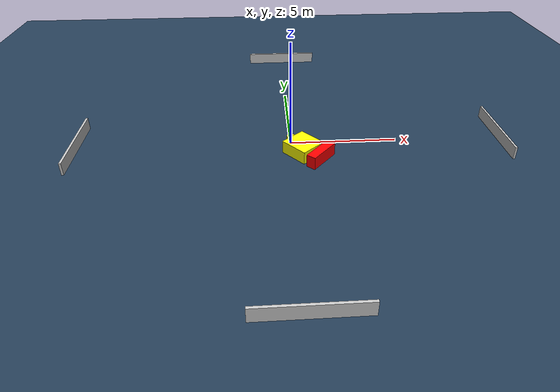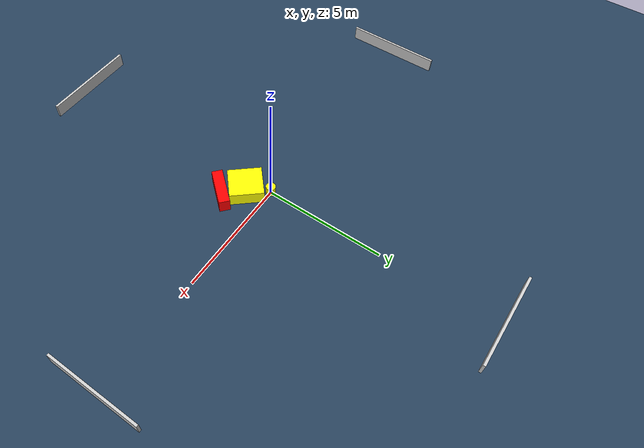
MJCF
<?xml version="1.0" ?>
<mujoco model="generated_environment">
  <option timestep="0.01" integrator="RK4" cone="elliptic"/>
  <default>
    <geom density="1"/>
  </default>
  <asset>
    <texture builtin="gradient" height="3072" name="skybox" rgb1="0.3 0.5 0.7" rgb2="0 0 0" type="skybox" width="512"/>
    <texture builtin="checker" height="300" name="groundplane" rgb1="0.2 0.3 0.4" rgb2="0.1 0.2 0.3" type="2d" width="300"/>
    <material name="groundplane" reflectance="0.2" texrepeat="5 5" texture="groundplane"/>
  </asset>
  <worldbody>
    <light dir="0 0 -1" directional="true" pos="0 0 1.5"/>
    <geom condim="3" friction="0.5 0.005 0.001" material="groundplane" name="floor" pos="0 0 0" size="0 0 0.05" type="plane"/>
    <body name="walls">
      <geom name="wall_1" condim="4" pos="-10.0 0.0 0.3" rgba="0.800000011920929 0.800000011920929 0.800000011920929 1.0" size="0.05 2.0 0.3" type="box"/>
      <geom name="wall_2" condim="4" pos="10.0 0.0 0.3" rgba="0.800000011920929 0.800000011920929 0.800000011920929 1.0" size="0.05 2.0 0.3" type="box"/>
      <geom name="wall_3" condim="4" pos="0.0 -10.0 0.3" rgba="0.800000011920929 0.800000011920929 0.800000011920929 1.0" size="2.0 0.05 0.3" type="box"/>
      <geom name="wall_4" condim="4" pos="0.0 10.0 0.3" rgba="0.800000011920929 0.800000011920929 0.800000011920929 1.0" size="2.0 0.05 0.3" type="box"/>
    </body>
    <body name="robot">
      <joint name="joint_x" type="slide" pos="0 0 0" axis="1 0 0"/>
      <joint name="joint_y" type="slide" pos="0 0 0" axis="0 1 0"/>
      <geom name="robot" type="cylinder" pos="0.0 0.0 0.2" size="0.2 0.2 0.0" mass="5.0" friction="1.0 0.005 0.0001" condim="4" rgba="1.0 1.0 0.0 1.0"/>
    </body>
    <body name="obstacle_1_movable">
      <geom name="obstacle_1_movable" condim="4" pos="0.4974747128323036 -0.8798509546119693 0.3" euler="0 0 131.14782323171758" friction="0.0 0.005 0.001" rgba="1.0 1.0 0.0 1.0" size="0.695074187677756 0.6415306452803673 0.3" type="box" mass="0.1"/>
      <joint type="free"/>
    </body>
    <body name="obstacle_2_static">
      <geom name="obstacle_2_static" condim="4" pos="1.247862057712846 -1.55100805543713 0.3" euler="0 0 318.7595626993003" friction="0.0 0.005 0.001" rgba="1.0 0.0 0.0 1.0" size="0.2225693430560451 0.7808475667103485 0.3" type="box"/>
    </body>
  </worldbody>
  <actuator>
    <motor name="actuator_x" joint="joint_x" gear="1" ctrlrange="-1 1"/>
    <motor name="actuator_y" joint="joint_y" gear="1" ctrlrange="-1 1"/>
  </actuator>
</mujoco>
